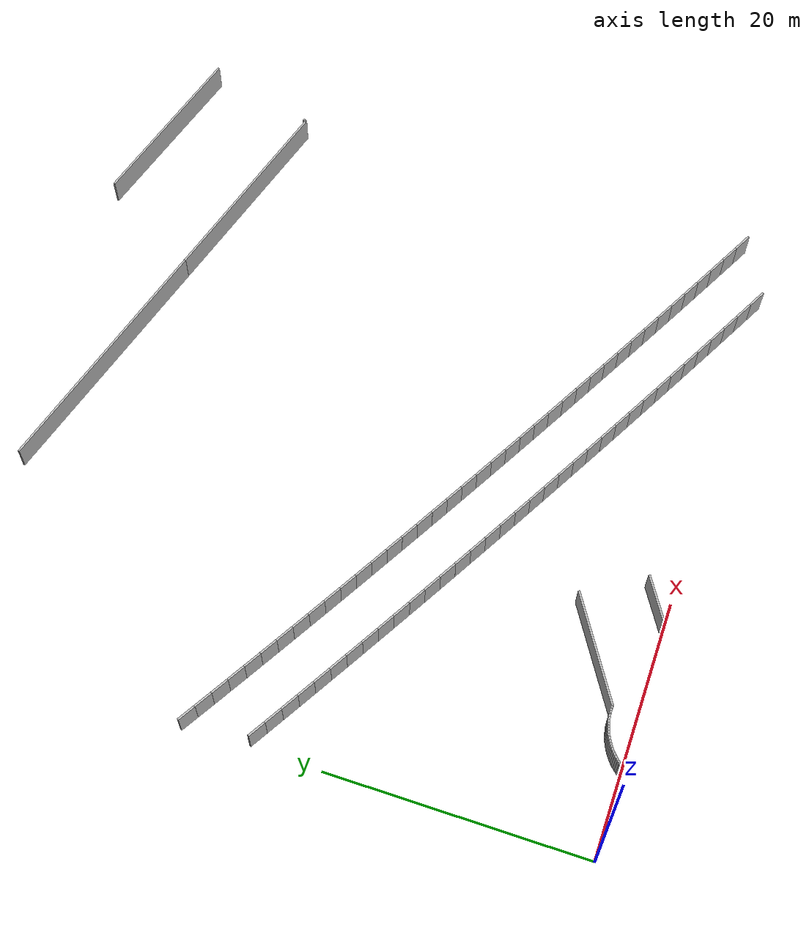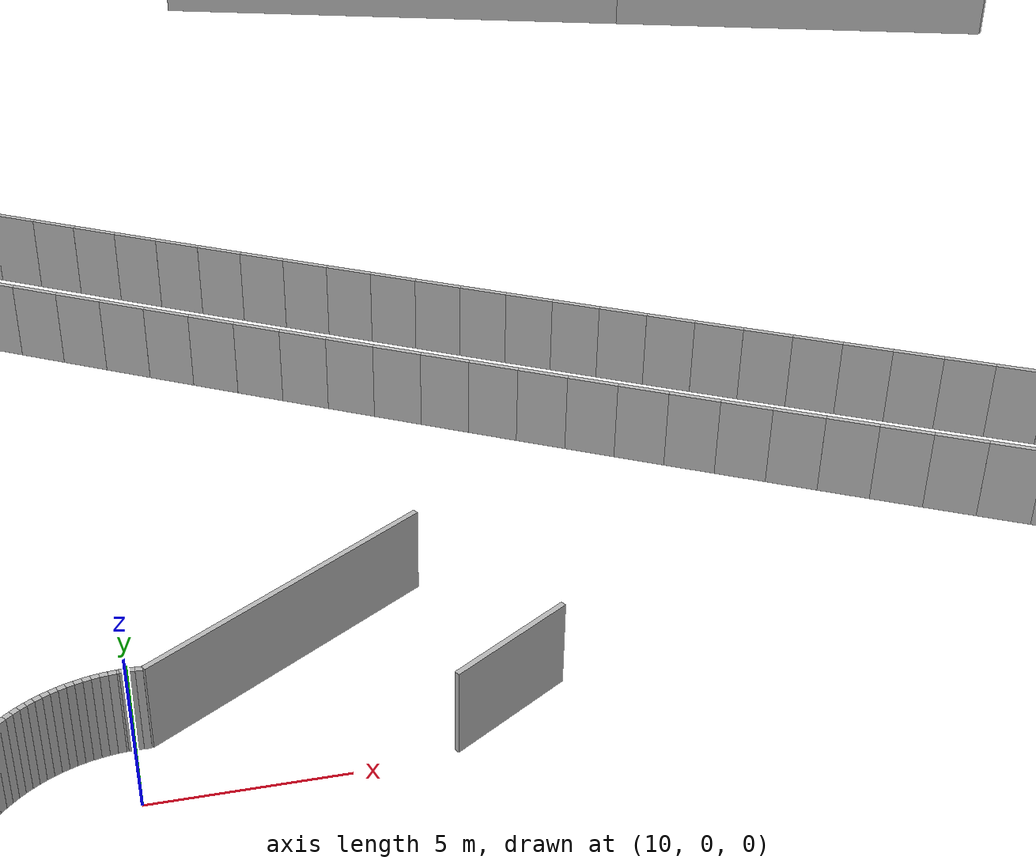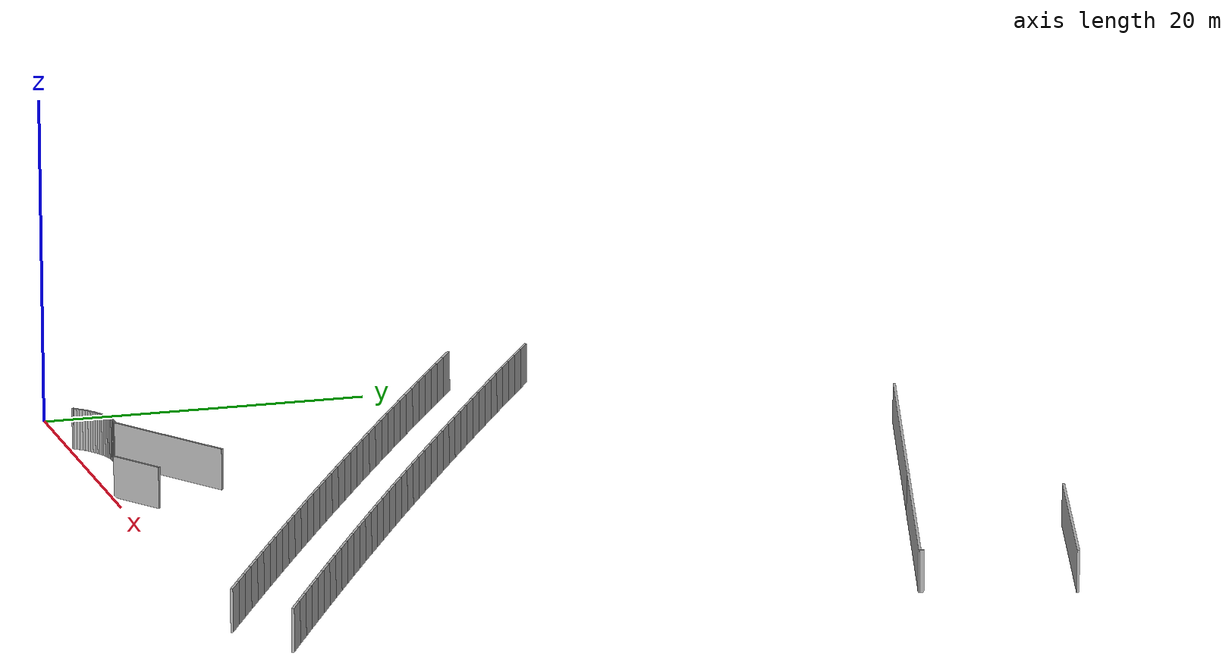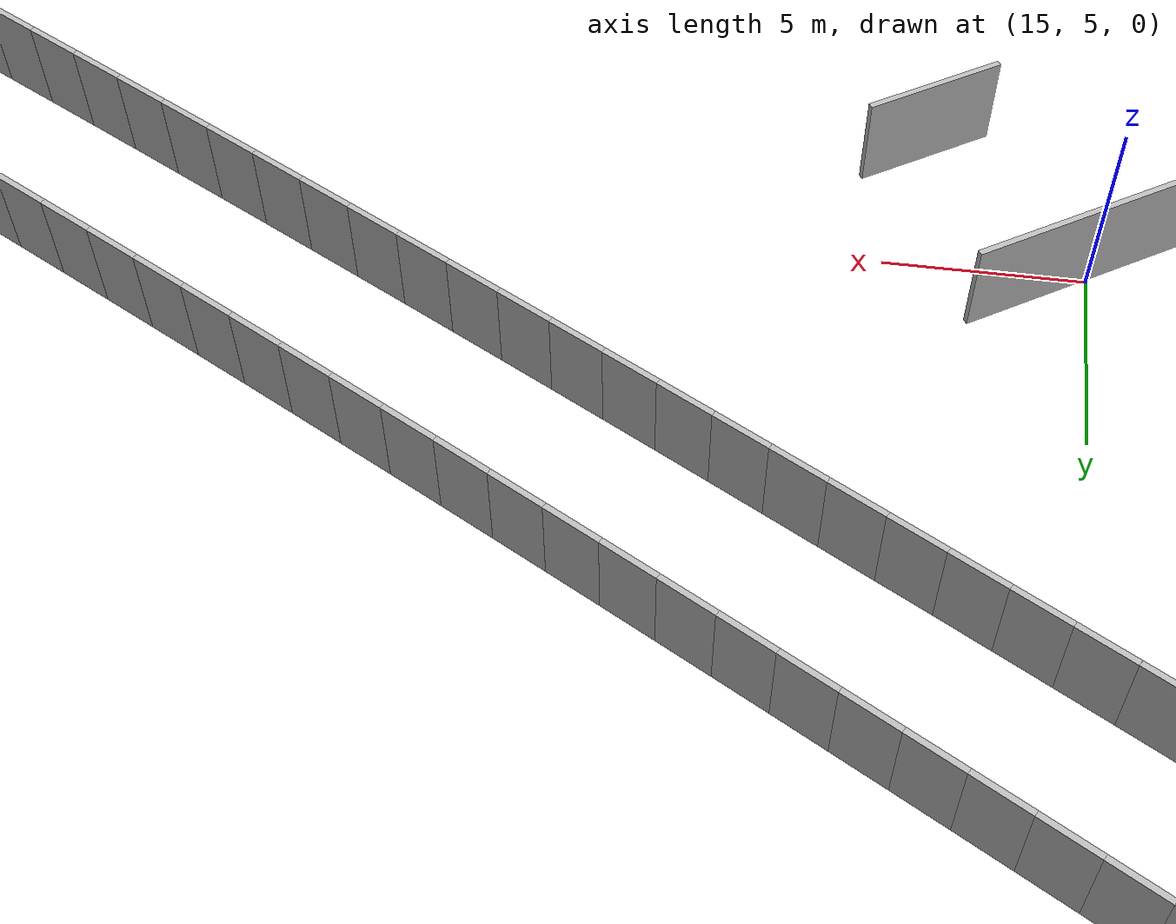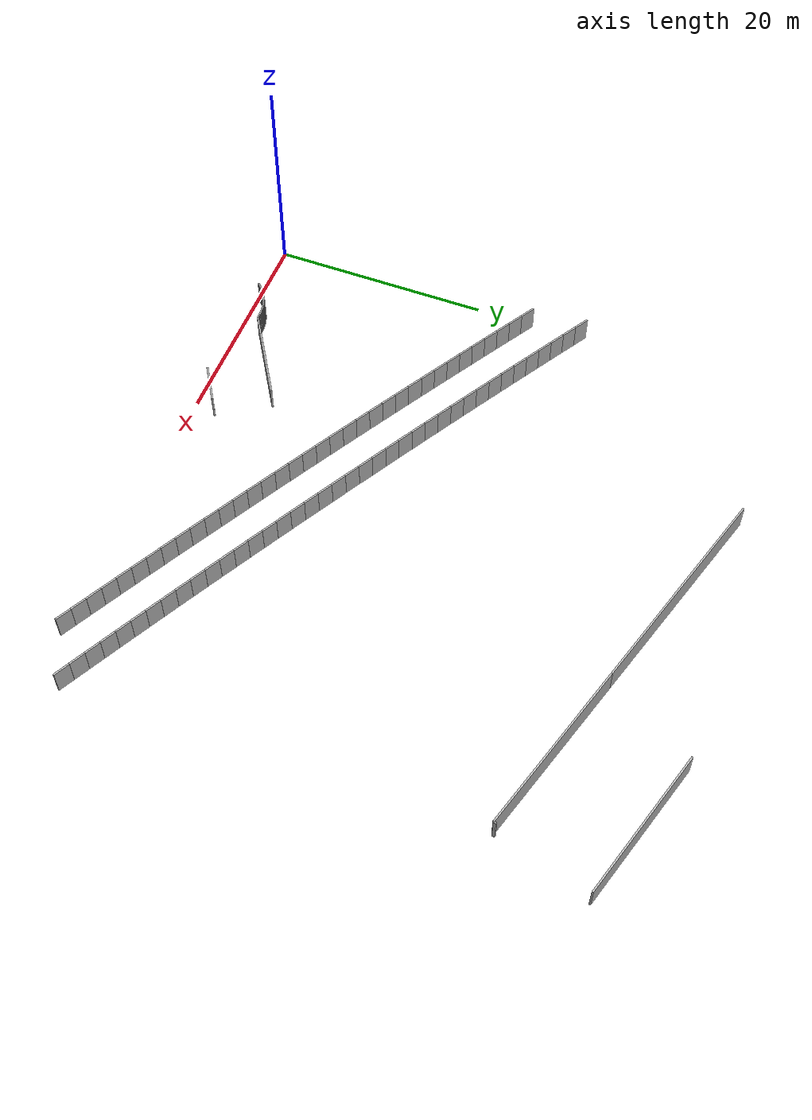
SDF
<sdf version="1.6">
 <model name="sps_1306">
  <static>1</static>
  <allow_auto_disable>0</allow_auto_disable>
  <link name="Wall348">
   <collision name="collision"><geometry><box><size>13.6171 0.15 2.5</size></box></geometry></collision>
   <visual name="visual">
    <geometry><box><size>13.6171 0.15 2.5</size></box></geometry>
    <transparency>0.0</transparency>
   </visual>
   <pose>45.7215 49.4496 1.25 0 -0 2.84871</pose>
  </link>
  <link name="Wall521">
   <collision name="collision"><geometry><box><size>0.246303 0.15 2.5</size></box></geometry></collision>
   <visual name="visual">
    <geometry><box><size>0.246303 0.15 2.5</size></box></geometry>
    <transparency>0.0</transparency>
   </visual>
   <pose>49.7046 39.0806 1.25 0 0 -1.86418</pose>
  </link>
  <link name="Wall605">
   <collision name="collision"><geometry><box><size>15.8757 0.15 2.5</size></box></geometry></collision>
   <visual name="visual">
    <geometry><box><size>15.8757 0.15 2.5</size></box></geometry>
    <transparency>0.0</transparency>
   </visual>
   <pose>42.0692 41.2546 1.25 0 -0 2.8487</pose>
  </link>
  <link name="Wall606">
   <collision name="collision"><geometry><box><size>20.1221 0.15 2.5</size></box></geometry></collision>
   <visual name="visual">
    <geometry><box><size>20.1221 0.15 2.5</size></box></geometry>
    <transparency>0.0</transparency>
   </visual>
   <pose>24.8368 46.4512 1.25 0 -0 2.8487</pose>
  </link>
  <link name="Wall2434">
   <collision name="collision"><geometry><box><size>3.67519 0.15 2.5</size></box></geometry></collision>
   <visual name="visual">
    <geometry><box><size>3.67519 0.15 2.5</size></box></geometry>
    <transparency>0.0</transparency>
   </visual>
   <pose>19.1415 1.16109 1.25 0 0 -2.58435</pose>
  </link>
  <link name="Wall2478">
   <collision name="collision"><geometry><box><size>0.130798 0.15 2.5</size></box></geometry></collision>
   <visual name="visual">
    <geometry><box><size>0.130798 0.15 2.5</size></box></geometry>
    <transparency>0.0</transparency>
   </visual>
   <pose>6.50817 0.300887 1.25 0 -0 0.557066</pose>
  </link>
  <link name="Wall2479">
   <collision name="collision"><geometry><box><size>0.205358 0.15 2.5</size></box></geometry></collision>
   <visual name="visual">
    <geometry><box><size>0.205358 0.15 2.5</size></box></geometry>
    <transparency>0.0</transparency>
   </visual>
   <pose>6.63137 0.412673 1.25 0 -0 0.851016</pose>
  </link>
  <link name="Wall2480">
   <collision name="collision"><geometry><box><size>0.20509 0.15 2.5</size></box></geometry></collision>
   <visual name="visual">
    <geometry><box><size>0.20509 0.15 2.5</size></box></geometry>
    <transparency>0.0</transparency>
   </visual>
   <pose>6.77004 0.563888 1.25 0 -0 0.806233</pose>
  </link>
  <link name="Wall2481">
   <collision name="collision"><geometry><box><size>0.205411 0.15 2.5</size></box></geometry></collision>
   <visual name="visual">
    <geometry><box><size>0.205411 0.15 2.5</size></box></geometry>
    <transparency>0.0</transparency>
   </visual>
   <pose>6.91543 0.708693 1.25 0 -0 0.760603</pose>
  </link>
  <link name="Wall2482">
   <collision name="collision"><geometry><box><size>0.205158 0.15 2.5</size></box></geometry></collision>
   <visual name="visual">
    <geometry><box><size>0.205158 0.15 2.5</size></box></geometry>
    <transparency>0.0</transparency>
   </visual>
   <pose>7.06725 0.846785 1.25 0 -0 0.7155</pose>
  </link>
  <link name="Wall2483">
   <collision name="collision"><geometry><box><size>0.205152 0.15 2.5</size></box></geometry></collision>
   <visual name="visual">
    <geometry><box><size>0.205152 0.15 2.5</size></box></geometry>
    <transparency>0.0</transparency>
   </visual>
   <pose>7.22506 0.977797 1.25 0 -0 0.67028</pose>
  </link>
  <link name="Wall2484">
   <collision name="collision"><geometry><box><size>0.205097 0.15 2.5</size></box></geometry></collision>
   <visual name="visual">
    <geometry><box><size>0.205097 0.15 2.5</size></box></geometry>
    <transparency>0.0</transparency>
   </visual>
   <pose>7.38854 1.10161 1.25 0 -0 0.626061</pose>
  </link>
  <link name="Wall2485">
   <collision name="collision"><geometry><box><size>0.205175 0.15 2.5</size></box></geometry></collision>
   <visual name="visual">
    <geometry><box><size>0.205175 0.15 2.5</size></box></geometry>
    <transparency>0.0</transparency>
   </visual>
   <pose>7.55746 1.21791 1.25 0 -0 0.579917</pose>
  </link>
  <link name="Wall2486">
   <collision name="collision"><geometry><box><size>0.205332 0.15 2.5</size></box></geometry></collision>
   <visual name="visual">
    <geometry><box><size>0.205332 0.15 2.5</size></box></geometry>
    <transparency>0.0</transparency>
   </visual>
   <pose>7.73156 1.32652 1.25 0 -0 0.535628</pose>
  </link>
  <link name="Wall2487">
   <collision name="collision"><geometry><box><size>0.205171 0.15 2.5</size></box></geometry></collision>
   <visual name="visual">
    <geometry><box><size>0.205171 0.15 2.5</size></box></geometry>
    <transparency>0.0</transparency>
   </visual>
   <pose>7.91036 1.4272 1.25 0 -0 0.489992</pose>
  </link>
  <link name="Wall2488">
   <collision name="collision"><geometry><box><size>0.205276 0.15 2.5</size></box></geometry></collision>
   <visual name="visual">
    <geometry><box><size>0.205276 0.15 2.5</size></box></geometry>
    <transparency>0.0</transparency>
   </visual>
   <pose>8.09356 1.51958 1.25 0 -0 0.4441</pose>
  </link>
  <link name="Wall2489">
   <collision name="collision"><geometry><box><size>0.205096 0.15 2.5</size></box></geometry></collision>
   <visual name="visual">
    <geometry><box><size>0.205096 0.15 2.5</size></box></geometry>
    <transparency>0.0</transparency>
   </visual>
   <pose>8.28066 1.60368 1.25 0 -0 0.400789</pose>
  </link>
  <link name="Wall2490">
   <collision name="collision"><geometry><box><size>0.205381 0.15 2.5</size></box></geometry></collision>
   <visual name="visual">
    <geometry><box><size>0.205381 0.15 2.5</size></box></geometry>
    <transparency>0.0</transparency>
   </visual>
   <pose>8.47137 1.6794 1.25 0 -0 0.355119</pose>
  </link>
  <link name="Wall2491">
   <collision name="collision"><geometry><box><size>0.205148 0.15 2.5</size></box></geometry></collision>
   <visual name="visual">
    <geometry><box><size>0.205148 0.15 2.5</size></box></geometry>
    <transparency>0.0</transparency>
   </visual>
   <pose>8.66537 1.74629 1.25 0 -0 0.308955</pose>
  </link>
  <link name="Wall2492">
   <collision name="collision"><geometry><box><size>0.205122 0.15 2.5</size></box></geometry></collision>
   <visual name="visual">
    <geometry><box><size>0.205122 0.15 2.5</size></box></geometry>
    <transparency>0.0</transparency>
   </visual>
   <pose>8.86208 1.80427 1.25 0 -0 0.264321</pose>
  </link>
  <link name="Wall2493">
   <collision name="collision"><geometry><box><size>0.205147 0.15 2.5</size></box></geometry></collision>
   <visual name="visual">
    <geometry><box><size>0.205147 0.15 2.5</size></box></geometry>
    <transparency>0.0</transparency>
   </visual>
   <pose>9.06118 1.85347 1.25 0 -0 0.220153</pose>
  </link>
  <link name="Wall2494">
   <collision name="collision"><geometry><box><size>0.205267 0.15 2.5</size></box></geometry></collision>
   <visual name="visual">
    <geometry><box><size>0.205267 0.15 2.5</size></box></geometry>
    <transparency>0.0</transparency>
   </visual>
   <pose>9.26235 1.89369 1.25 0 -0 0.174534</pose>
  </link>
  <link name="Wall2495">
   <collision name="collision"><geometry><box><size>0.205313 0.15 2.5</size></box></geometry></collision>
   <visual name="visual">
    <geometry><box><size>0.205313 0.15 2.5</size></box></geometry>
    <transparency>0.0</transparency>
   </visual>
   <pose>9.46523 1.9247 1.25 0 -0 0.12878</pose>
  </link>
  <link name="Wall2496">
   <collision name="collision"><geometry><box><size>0.205328 0.15 2.5</size></box></geometry></collision>
   <visual name="visual">
    <geometry><box><size>0.205328 0.15 2.5</size></box></geometry>
    <transparency>0.0</transparency>
   </visual>
   <pose>9.66933 1.94658 1.25 0 -0 0.0848199</pose>
  </link>
  <link name="Wall2497">
   <collision name="collision"><geometry><box><size>0.0512757 0.15 2.5</size></box></geometry></collision>
   <visual name="visual">
    <geometry><box><size>0.0512757 0.15 2.5</size></box></geometry>
    <transparency>0.0</transparency>
   </visual>
   <pose>9.79723 1.95659 1.25 0 -0 0.0512067</pose>
  </link>
  <link name="Wall2498">
   <collision name="collision"><geometry><box><size>0.188316 0.15 2.5</size></box></geometry></collision>
   <visual name="visual">
    <geometry><box><size>0.188316 0.15 2.5</size></box></geometry>
    <transparency>0.0</transparency>
   </visual>
   <pose>9.91695 1.96071 1.25 0 -0 0.0298225</pose>
  </link>
  <link name="Wall2499">
   <collision name="collision"><geometry><box><size>0.188004 0.15 2.5</size></box></geometry></collision>
   <visual name="visual">
    <geometry><box><size>0.188004 0.15 2.5</size></box></geometry>
    <transparency>0.0</transparency>
   </visual>
   <pose>10.1051 1.96229 1.25 0 0 -0.0129863</pose>
  </link>
  <link name="Wall2500">
   <collision name="collision"><geometry><box><size>0.188059 0.15 2.5</size></box></geometry></collision>
   <visual name="visual">
    <geometry><box><size>0.188059 0.15 2.5</size></box></geometry>
    <transparency>0.0</transparency>
   </visual>
   <pose>10.293 1.95619 1.25 0 0 -0.0519519</pose>
  </link>
  <link name="Wall2501">
   <collision name="collision"><geometry><box><size>8.85031 0.15 2.5</size></box></geometry></collision>
   <visual name="visual">
    <geometry><box><size>8.85031 0.15 2.5</size></box></geometry>
    <transparency>0.0</transparency>
   </visual>
   <pose>14.1428 4.29109 1.25 0 -0 0.557123</pose>
  </link>
  <link name="Wall8672">
   <collision name="collision"><geometry><box><size>1.49901 0.15 2.5</size></box></geometry></collision>
   <visual name="visual">
    <geometry><box><size>1.49901 0.15 2.5</size></box></geometry>
    <transparency>0.0</transparency>
   </visual>
   <pose>0.78054 25.1134 1.25 0 0 -0.53308</pose>
  </link>
  <link name="Wall8673">
   <collision name="collision"><geometry><box><size>1.49907 0.15 2.5</size></box></geometry></collision>
   <visual name="visual">
    <geometry><box><size>1.49907 0.15 2.5</size></box></geometry>
    <transparency>0.0</transparency>
   </visual>
   <pose>2.07217 24.3526 1.25 0 0 -0.531544</pose>
  </link>
  <link name="Wall8674">
   <collision name="collision"><geometry><box><size>1.49881 0.15 2.5</size></box></geometry></collision>
   <visual name="visual">
    <geometry><box><size>1.49881 0.15 2.5</size></box></geometry>
    <transparency>0.0</transparency>
   </visual>
   <pose>3.36486 23.5938 1.25 0 0 -0.530041</pose>
  </link>
  <link name="Wall8675">
   <collision name="collision"><geometry><box><size>1.499 0.15 2.5</size></box></geometry></collision>
   <visual name="visual">
    <geometry><box><size>1.499 0.15 2.5</size></box></geometry>
    <transparency>0.0</transparency>
   </visual>
   <pose>4.65874 22.8371 1.25 0 0 -0.528318</pose>
  </link>
  <link name="Wall8676">
   <collision name="collision"><geometry><box><size>1.49898 0.15 2.5</size></box></geometry></collision>
   <visual name="visual">
    <geometry><box><size>1.49898 0.15 2.5</size></box></geometry>
    <transparency>0.0</transparency>
   </visual>
   <pose>5.95394 22.0825 1.25 0 0 -0.526767</pose>
  </link>
  <link name="Wall8677">
   <collision name="collision"><geometry><box><size>1.49887 0.15 2.5</size></box></geometry></collision>
   <visual name="visual">
    <geometry><box><size>1.49887 0.15 2.5</size></box></geometry>
    <transparency>0.0</transparency>
   </visual>
   <pose>7.25024 21.3299 1.25 0 0 -0.525258</pose>
  </link>
  <link name="Wall8678">
   <collision name="collision"><geometry><box><size>1.49895 0.15 2.5</size></box></geometry></collision>
   <visual name="visual">
    <geometry><box><size>1.49895 0.15 2.5</size></box></geometry>
    <transparency>0.0</transparency>
   </visual>
   <pose>8.54766 20.5793 1.25 0 0 -0.523722</pose>
  </link>
  <link name="Wall8679">
   <collision name="collision"><geometry><box><size>1.49898 0.15 2.5</size></box></geometry></collision>
   <visual name="visual">
    <geometry><box><size>1.49898 0.15 2.5</size></box></geometry>
    <transparency>0.0</transparency>
   </visual>
   <pose>9.84637 19.8308 1.25 0 0 -0.521969</pose>
  </link>
  <link name="Wall8680">
   <collision name="collision"><geometry><box><size>1.499 0.15 2.5</size></box></geometry></collision>
   <visual name="visual">
    <geometry><box><size>1.499 0.15 2.5</size></box></geometry>
    <transparency>0.0</transparency>
   </visual>
   <pose>11.1463 19.0843 1.25 0 0 -0.520601</pose>
  </link>
  <link name="Wall8681">
   <collision name="collision"><geometry><box><size>1.49883 0.15 2.5</size></box></geometry></collision>
   <visual name="visual">
    <geometry><box><size>1.49883 0.15 2.5</size></box></geometry>
    <transparency>0.0</transparency>
   </visual>
   <pose>12.4473 18.3399 1.25 0 0 -0.518838</pose>
  </link>
  <link name="Wall8682">
   <collision name="collision"><geometry><box><size>1.49898 0.15 2.5</size></box></geometry></collision>
   <visual name="visual">
    <geometry><box><size>1.49898 0.15 2.5</size></box></geometry>
    <transparency>0.0</transparency>
   </visual>
   <pose>13.7494 17.5976 1.25 0 0 -0.517373</pose>
  </link>
  <link name="Wall8683">
   <collision name="collision"><geometry><box><size>1.4988 0.15 2.5</size></box></geometry></collision>
   <visual name="visual">
    <geometry><box><size>1.4988 0.15 2.5</size></box></geometry>
    <transparency>0.0</transparency>
   </visual>
   <pose>15.0528 16.8573 1.25 0 0 -0.515757</pose>
  </link>
  <link name="Wall8684">
   <collision name="collision"><geometry><box><size>1.49897 0.15 2.5</size></box></geometry></collision>
   <visual name="visual">
    <geometry><box><size>1.49897 0.15 2.5</size></box></geometry>
    <transparency>0.0</transparency>
   </visual>
   <pose>16.3573 16.1191 1.25 0 0 -0.514146</pose>
  </link>
  <link name="Wall8685">
   <collision name="collision"><geometry><box><size>1.49908 0.15 2.5</size></box></geometry></collision>
   <visual name="visual">
    <geometry><box><size>1.49908 0.15 2.5</size></box></geometry>
    <transparency>0.0</transparency>
   </visual>
   <pose>17.663 15.3829 1.25 0 0 -0.512611</pose>
  </link>
  <link name="Wall8686">
   <collision name="collision"><geometry><box><size>1.49888 0.15 2.5</size></box></geometry></collision>
   <visual name="visual">
    <geometry><box><size>1.49888 0.15 2.5</size></box></geometry>
    <transparency>0.0</transparency>
   </visual>
   <pose>18.97 14.6488 1.25 0 0 -0.510959</pose>
  </link>
  <link name="Wall8687">
   <collision name="collision"><geometry><box><size>1.49893 0.15 2.5</size></box></geometry></collision>
   <visual name="visual">
    <geometry><box><size>1.49893 0.15 2.5</size></box></geometry>
    <transparency>0.0</transparency>
   </visual>
   <pose>20.278 13.9168 1.25 0 0 -0.509444</pose>
  </link>
  <link name="Wall8688">
   <collision name="collision"><geometry><box><size>1.49897 0.15 2.5</size></box></geometry></collision>
   <visual name="visual">
    <geometry><box><size>1.49897 0.15 2.5</size></box></geometry>
    <transparency>0.0</transparency>
   </visual>
   <pose>21.5871 13.1868 1.25 0 0 -0.507893</pose>
  </link>
  <link name="Wall8689">
   <collision name="collision"><geometry><box><size>1.49886 0.15 2.5</size></box></geometry></collision>
   <visual name="visual">
    <geometry><box><size>1.49886 0.15 2.5</size></box></geometry>
    <transparency>0.0</transparency>
   </visual>
   <pose>22.8975 12.4589 1.25 0 0 -0.506256</pose>
  </link>
  <link name="Wall8690">
   <collision name="collision"><geometry><box><size>1.49893 0.15 2.5</size></box></geometry></collision>
   <visual name="visual">
    <geometry><box><size>1.49893 0.15 2.5</size></box></geometry>
    <transparency>0.0</transparency>
   </visual>
   <pose>24.2089 11.733 1.25 0 0 -0.504832</pose>
  </link>
  <link name="Wall8691">
   <collision name="collision"><geometry><box><size>1.49891 0.15 2.5</size></box></geometry></collision>
   <visual name="visual">
    <geometry><box><size>1.49891 0.15 2.5</size></box></geometry>
    <transparency>0.0</transparency>
   </visual>
   <pose>25.5214 11.0092 1.25 0 0 -0.503029</pose>
  </link>
  <link name="Wall8692">
   <collision name="collision"><geometry><box><size>1.49907 0.15 2.5</size></box></geometry></collision>
   <visual name="visual">
    <geometry><box><size>1.49907 0.15 2.5</size></box></geometry>
    <transparency>0.0</transparency>
   </visual>
   <pose>26.8353 10.2875 1.25 0 0 -0.501621</pose>
  </link>
  <link name="Wall8693">
   <collision name="collision"><geometry><box><size>1.49897 0.15 2.5</size></box></geometry></collision>
   <visual name="visual">
    <geometry><box><size>1.49897 0.15 2.5</size></box></geometry>
    <transparency>0.0</transparency>
   </visual>
   <pose>28.1503 9.56789 1.25 0 0 -0.499802</pose>
  </link>
  <link name="Wall8694">
   <collision name="collision"><geometry><box><size>1.49898 0.15 2.5</size></box></geometry></collision>
   <visual name="visual">
    <geometry><box><size>1.49898 0.15 2.5</size></box></geometry>
    <transparency>0.0</transparency>
   </visual>
   <pose>29.4664 8.85039 1.25 0 0 -0.498453</pose>
  </link>
  <link name="Wall8695">
   <collision name="collision"><geometry><box><size>1.49889 0.15 2.5</size></box></geometry></collision>
   <visual name="visual">
    <geometry><box><size>1.49889 0.15 2.5</size></box></geometry>
    <transparency>0.0</transparency>
   </visual>
   <pose>30.7836 8.13499 1.25 0 0 -0.496633</pose>
  </link>
  <link name="Wall8696">
   <collision name="collision"><geometry><box><size>1.4989 0.15 2.5</size></box></geometry></collision>
   <visual name="visual">
    <geometry><box><size>1.4989 0.15 2.5</size></box></geometry>
    <transparency>0.0</transparency>
   </visual>
   <pose>32.1019 7.42171 1.25 0 0 -0.495284</pose>
  </link>
  <link name="Wall8697">
   <collision name="collision"><geometry><box><size>1.49894 0.15 2.5</size></box></geometry></collision>
   <visual name="visual">
    <geometry><box><size>1.49894 0.15 2.5</size></box></geometry>
    <transparency>0.0</transparency>
   </visual>
   <pose>33.4213 6.7104 1.25 0 0 -0.493608</pose>
  </link>
  <link name="Wall8698">
   <collision name="collision"><geometry><box><size>1.49884 0.15 2.5</size></box></geometry></collision>
   <visual name="visual">
    <geometry><box><size>1.49884 0.15 2.5</size></box></geometry>
    <transparency>0.0</transparency>
   </visual>
   <pose>34.7418 6.0012 1.25 0 0 -0.492116</pose>
  </link>
  <link name="Wall8699">
   <collision name="collision"><geometry><box><size>1.49905 0.15 2.5</size></box></geometry></collision>
   <visual name="visual">
    <geometry><box><size>1.49905 0.15 2.5</size></box></geometry>
    <transparency>0.0</transparency>
   </visual>
   <pose>36.0634 5.29411 1.25 0 0 -0.490381</pose>
  </link>
  <link name="Wall8700">
   <collision name="collision"><geometry><box><size>1.49888 0.15 2.5</size></box></geometry></collision>
   <visual name="visual">
    <geometry><box><size>1.49888 0.15 2.5</size></box></geometry>
    <transparency>0.0</transparency>
   </visual>
   <pose>37.3863 4.5891 1.25 0 0 -0.488963</pose>
  </link>
  <link name="Wall8701">
   <collision name="collision"><geometry><box><size>1.49909 0.15 2.5</size></box></geometry></collision>
   <visual name="visual">
    <geometry><box><size>1.49909 0.15 2.5</size></box></geometry>
    <transparency>0.0</transparency>
   </visual>
   <pose>38.7102 3.88609 1.25 0 0 -0.48732</pose>
  </link>
  <link name="Wall8702">
   <collision name="collision"><geometry><box><size>1.4988 0.15 2.5</size></box></geometry></collision>
   <visual name="visual">
    <geometry><box><size>1.4988 0.15 2.5</size></box></geometry>
    <transparency>0.0</transparency>
   </visual>
   <pose>40.0351 3.18519 1.25 0 0 -0.485813</pose>
  </link>
  <link name="Wall8703">
   <collision name="collision"><geometry><box><size>1.49904 0.15 2.5</size></box></geometry></collision>
   <visual name="visual">
    <geometry><box><size>1.49904 0.15 2.5</size></box></geometry>
    <transparency>0.0</transparency>
   </visual>
   <pose>41.3613 2.48649 1.25 0 0 -0.484025</pose>
  </link>
  <link name="Wall8704">
   <collision name="collision"><geometry><box><size>1.49894 0.15 2.5</size></box></geometry></collision>
   <visual name="visual">
    <geometry><box><size>1.49894 0.15 2.5</size></box></geometry>
    <transparency>0.0</transparency>
   </visual>
   <pose>42.6886 1.7899 1.25 0 0 -0.482587</pose>
  </link>
  <link name="Wall8705">
   <collision name="collision"><geometry><box><size>1.49884 0.15 2.5</size></box></geometry></collision>
   <visual name="visual">
    <geometry><box><size>1.49884 0.15 2.5</size></box></geometry>
    <transparency>0.0</transparency>
   </visual>
   <pose>44.0168 1.09538 1.25 0 0 -0.480967</pose>
  </link>
  <link name="Wall8706">
   <collision name="collision"><geometry><box><size>1.49908 0.15 2.5</size></box></geometry></collision>
   <visual name="visual">
    <geometry><box><size>1.49908 0.15 2.5</size></box></geometry>
    <transparency>0.0</transparency>
   </visual>
   <pose>45.3462 0.402877 1.25 0 0 -0.479508</pose>
  </link>
  <link name="Wall9751">
   <collision name="collision"><geometry><box><size>1.49251 0.15 2.5</size></box></geometry></collision>
   <visual name="visual">
    <geometry><box><size>1.49251 0.15 2.5</size></box></geometry>
    <transparency>0.0</transparency>
   </visual>
   <pose>0.316551 30.2 1.25 0 0 -0.536317</pose>
  </link>
  <link name="Wall9752">
   <collision name="collision"><geometry><box><size>1.49225 0.15 2.5</size></box></geometry></collision>
   <visual name="visual">
    <geometry><box><size>1.49225 0.15 2.5</size></box></geometry>
    <transparency>0.0</transparency>
   </visual>
   <pose>1.60003 29.4385 1.25 0 0 -0.534661</pose>
  </link>
  <link name="Wall9753">
   <collision name="collision"><geometry><box><size>1.49231 0.15 2.5</size></box></geometry></collision>
   <visual name="visual">
    <geometry><box><size>1.49231 0.15 2.5</size></box></geometry>
    <transparency>0.0</transparency>
   </visual>
   <pose>2.88464 28.6791 1.25 0 0 -0.533118</pose>
  </link>
  <link name="Wall9754">
   <collision name="collision"><geometry><box><size>1.49243 0.15 2.5</size></box></geometry></collision>
   <visual name="visual">
    <geometry><box><size>1.49243 0.15 2.5</size></box></geometry>
    <transparency>0.0</transparency>
   </visual>
   <pose>4.17046 27.9216 1.25 0 0 -0.531645</pose>
  </link>
  <link name="Wall9755">
   <collision name="collision"><geometry><box><size>1.49248 0.15 2.5</size></box></geometry></collision>
   <visual name="visual">
    <geometry><box><size>1.49248 0.15 2.5</size></box></geometry>
    <transparency>0.0</transparency>
   </visual>
   <pose>5.45757 27.1661 1.25 0 0 -0.52992</pose>
  </link>
  <link name="Wall9756">
   <collision name="collision"><geometry><box><size>1.49236 0.15 2.5</size></box></geometry></collision>
   <visual name="visual">
    <geometry><box><size>1.49236 0.15 2.5</size></box></geometry>
    <transparency>0.0</transparency>
   </visual>
   <pose>6.74587 26.4127 1.25 0 0 -0.528404</pose>
  </link>
  <link name="Wall9757">
   <collision name="collision"><geometry><box><size>1.49253 0.15 2.5</size></box></geometry></collision>
   <visual name="visual">
    <geometry><box><size>1.49253 0.15 2.5</size></box></geometry>
    <transparency>0.0</transparency>
   </visual>
   <pose>8.03536 25.6613 1.25 0 0 -0.52682</pose>
  </link>
  <link name="Wall9758">
   <collision name="collision"><geometry><box><size>1.4923 0.15 2.5</size></box></geometry></collision>
   <visual name="visual">
    <geometry><box><size>1.4923 0.15 2.5</size></box></geometry>
    <transparency>0.0</transparency>
   </visual>
   <pose>9.32604 24.912 1.25 0 0 -0.525163</pose>
  </link>
  <link name="Wall9759">
   <collision name="collision"><geometry><box><size>1.49247 0.15 2.5</size></box></geometry></collision>
   <visual name="visual">
    <geometry><box><size>1.49247 0.15 2.5</size></box></geometry>
    <transparency>0.0</transparency>
   </visual>
   <pose>10.6179 24.1647 1.25 0 0 -0.523727</pose>
  </link>
  <link name="Wall9760">
   <collision name="collision"><geometry><box><size>1.49237 0.15 2.5</size></box></geometry></collision>
   <visual name="visual">
    <geometry><box><size>1.49237 0.15 2.5</size></box></geometry>
    <transparency>0.0</transparency>
   </visual>
   <pose>11.9108 23.4194 1.25 0 0 -0.522063</pose>
  </link>
  <link name="Wall9761">
   <collision name="collision"><geometry><box><size>1.49246 0.15 2.5</size></box></geometry></collision>
   <visual name="visual">
    <geometry><box><size>1.49246 0.15 2.5</size></box></geometry>
    <transparency>0.0</transparency>
   </visual>
   <pose>13.205 22.6762 1.25 0 0 -0.520521</pose>
  </link>
  <link name="Wall9762">
   <collision name="collision"><geometry><box><size>1.49224 0.15 2.5</size></box></geometry></collision>
   <visual name="visual">
    <geometry><box><size>1.49224 0.15 2.5</size></box></geometry>
    <transparency>0.0</transparency>
   </visual>
   <pose>14.5004 21.9351 1.25 0 0 -0.518862</pose>
  </link>
  <link name="Wall9763">
   <collision name="collision"><geometry><box><size>1.4925 0.15 2.5</size></box></geometry></collision>
   <visual name="visual">
    <geometry><box><size>1.4925 0.15 2.5</size></box></geometry>
    <transparency>0.0</transparency>
   </visual>
   <pose>15.7969 21.196 1.25 0 0 -0.517351</pose>
  </link>
  <link name="Wall9764">
   <collision name="collision"><geometry><box><size>1.49235 0.15 2.5</size></box></geometry></collision>
   <visual name="visual">
    <geometry><box><size>1.49235 0.15 2.5</size></box></geometry>
    <transparency>0.0</transparency>
   </visual>
   <pose>17.0946 20.4589 1.25 0 0 -0.515763</pose>
  </link>
  <link name="Wall9765">
   <collision name="collision"><geometry><box><size>1.49227 0.15 2.5</size></box></geometry></collision>
   <visual name="visual">
    <geometry><box><size>1.49227 0.15 2.5</size></box></geometry>
    <transparency>0.0</transparency>
   </visual>
   <pose>18.3934 19.724 1.25 0 0 -0.514098</pose>
  </link>
  <link name="Wall9766">
   <collision name="collision"><geometry><box><size>1.49244 0.15 2.5</size></box></geometry></collision>
   <visual name="visual">
    <geometry><box><size>1.49244 0.15 2.5</size></box></geometry>
    <transparency>0.0</transparency>
   </visual>
   <pose>19.6934 18.9911 1.25 0 0 -0.512628</pose>
  </link>
  <link name="Wall9767">
   <collision name="collision"><geometry><box><size>1.49243 0.15 2.5</size></box></geometry></collision>
   <visual name="visual">
    <geometry><box><size>1.49243 0.15 2.5</size></box></geometry>
    <transparency>0.0</transparency>
   </visual>
   <pose>20.9946 18.2602 1.25 0 0 -0.510944</pose>
  </link>
  <link name="Wall9768">
   <collision name="collision"><geometry><box><size>1.49238 0.15 2.5</size></box></geometry></collision>
   <visual name="visual">
    <geometry><box><size>1.49238 0.15 2.5</size></box></geometry>
    <transparency>0.0</transparency>
   </visual>
   <pose>22.2969 17.5313 1.25 0 0 -0.509553</pose>
  </link>
  <link name="Wall9769">
   <collision name="collision"><geometry><box><size>1.49257 0.15 2.5</size></box></geometry></collision>
   <visual name="visual">
    <geometry><box><size>1.49257 0.15 2.5</size></box></geometry>
    <transparency>0.0</transparency>
   </visual>
   <pose>23.6004 16.8044 1.25 0 0 -0.507845</pose>
  </link>
  <link name="Wall9770">
   <collision name="collision"><geometry><box><size>1.49245 0.15 2.5</size></box></geometry></collision>
   <visual name="visual">
    <geometry><box><size>1.49245 0.15 2.5</size></box></geometry>
    <transparency>0.0</transparency>
   </visual>
   <pose>24.9051 16.0796 1.25 0 0 -0.506348</pose>
  </link>
  <link name="Wall9771">
   <collision name="collision"><geometry><box><size>1.49242 0.15 2.5</size></box></geometry></collision>
   <visual name="visual">
    <geometry><box><size>1.49242 0.15 2.5</size></box></geometry>
    <transparency>0.0</transparency>
   </visual>
   <pose>26.2108 15.3569 1.25 0 0 -0.504628</pose>
  </link>
  <link name="Wall9772">
   <collision name="collision"><geometry><box><size>1.49239 0.15 2.5</size></box></geometry></collision>
   <visual name="visual">
    <geometry><box><size>1.49239 0.15 2.5</size></box></geometry>
    <transparency>0.0</transparency>
   </visual>
   <pose>27.5178 14.6363 1.25 0 0 -0.503146</pose>
  </link>
  <link name="Wall9773">
   <collision name="collision"><geometry><box><size>1.49234 0.15 2.5</size></box></geometry></collision>
   <visual name="visual">
    <geometry><box><size>1.49234 0.15 2.5</size></box></geometry>
    <transparency>0.0</transparency>
   </visual>
   <pose>28.8258 13.9178 1.25 0 0 -0.501481</pose>
  </link>
  <link name="Wall9774">
   <collision name="collision"><geometry><box><size>1.49245 0.15 2.5</size></box></geometry></collision>
   <visual name="visual">
    <geometry><box><size>1.49245 0.15 2.5</size></box></geometry>
    <transparency>0.0</transparency>
   </visual>
   <pose>30.135 13.2014 1.25 0 0 -0.499905</pose>
  </link>
  <link name="Wall9775">
   <collision name="collision"><geometry><box><size>1.49237 0.15 2.5</size></box></geometry></collision>
   <visual name="visual">
    <geometry><box><size>1.49237 0.15 2.5</size></box></geometry>
    <transparency>0.0</transparency>
   </visual>
   <pose>31.4453 12.487 1.25 0 0 -0.498443</pose>
  </link>
  <link name="Wall9776">
   <collision name="collision"><geometry><box><size>1.49237 0.15 2.5</size></box></geometry></collision>
   <visual name="visual">
    <geometry><box><size>1.49237 0.15 2.5</size></box></geometry>
    <transparency>0.0</transparency>
   </visual>
   <pose>32.7567 11.7747 1.25 0 0 -0.496722</pose>
  </link>
  <link name="Wall9777">
   <collision name="collision"><geometry><box><size>1.49238 0.15 2.5</size></box></geometry></collision>
   <visual name="visual">
    <geometry><box><size>1.49238 0.15 2.5</size></box></geometry>
    <transparency>0.0</transparency>
   </visual>
   <pose>34.0692 11.0644 1.25 0 0 -0.495368</pose>
  </link>
  <link name="Wall9778">
   <collision name="collision"><geometry><box><size>1.49246 0.15 2.5</size></box></geometry></collision>
   <visual name="visual">
    <geometry><box><size>1.49246 0.15 2.5</size></box></geometry>
    <transparency>0.0</transparency>
   </visual>
   <pose>35.3829 10.3562 1.25 0 0 -0.493482</pose>
  </link>
  <link name="Wall9779">
   <collision name="collision"><geometry><box><size>1.4924 0.15 2.5</size></box></geometry></collision>
   <visual name="visual">
    <geometry><box><size>1.4924 0.15 2.5</size></box></geometry>
    <transparency>0.0</transparency>
   </visual>
   <pose>36.6977 9.65019 1.25 0 0 -0.492019</pose>
  </link>
  <link name="Wall9780">
   <collision name="collision"><geometry><box><size>1.49236 0.15 2.5</size></box></geometry></collision>
   <visual name="visual">
    <geometry><box><size>1.49236 0.15 2.5</size></box></geometry>
    <transparency>0.0</transparency>
   </visual>
   <pose>38.0136 8.94618 1.25 0 0 -0.490501</pose>
  </link>
  <link name="Wall9781">
   <collision name="collision"><geometry><box><size>1.49249 0.15 2.5</size></box></geometry></collision>
   <visual name="visual">
    <geometry><box><size>1.49249 0.15 2.5</size></box></geometry>
    <transparency>0.0</transparency>
   </visual>
   <pose>39.3306 8.24419 1.25 0 0 -0.488925</pose>
  </link>
  <link name="Wall9782">
   <collision name="collision"><geometry><box><size>1.49232 0.15 2.5</size></box></geometry></collision>
   <visual name="visual">
    <geometry><box><size>1.49232 0.15 2.5</size></box></geometry>
    <transparency>0.0</transparency>
   </visual>
   <pose>40.6488 7.5443 1.25 0 0 -0.487318</pose>
  </link>
  <link name="Wall9783">
   <collision name="collision"><geometry><box><size>1.49241 0.15 2.5</size></box></geometry></collision>
   <visual name="visual">
    <geometry><box><size>1.49241 0.15 2.5</size></box></geometry>
    <transparency>0.0</transparency>
   </visual>
   <pose>41.9679 6.84651 1.25 0 0 -0.485762</pose>
  </link>
  <link name="Wall9784">
   <collision name="collision"><geometry><box><size>1.49233 0.15 2.5</size></box></geometry></collision>
   <visual name="visual">
    <geometry><box><size>1.49233 0.15 2.5</size></box></geometry>
    <transparency>0.0</transparency>
   </visual>
   <pose>43.2882 6.1508 1.25 0 0 -0.484171</pose>
  </link>
  <link name="Wall9785">
   <collision name="collision"><geometry><box><size>1.49244 0.15 2.5</size></box></geometry></collision>
   <visual name="visual">
    <geometry><box><size>1.49244 0.15 2.5</size></box></geometry>
    <transparency>0.0</transparency>
   </visual>
   <pose>44.6096 5.4572 1.25 0 0 -0.48256</pose>
  </link>
  <link name="Wall9786">
   <collision name="collision"><geometry><box><size>1.49232 0.15 2.5</size></box></geometry></collision>
   <visual name="visual">
    <geometry><box><size>1.49232 0.15 2.5</size></box></geometry>
    <transparency>0.0</transparency>
   </visual>
   <pose>45.9322 4.7657 1.25 0 0 -0.480988</pose>
  </link>
  <link name="Wall9787">
   <collision name="collision"><geometry><box><size>1.49247 0.15 2.5</size></box></geometry></collision>
   <visual name="visual">
    <geometry><box><size>1.49247 0.15 2.5</size></box></geometry>
    <transparency>0.0</transparency>
   </visual>
   <pose>47.2558 4.07628 1.25 0 0 -0.479413</pose>
  </link>
  <link name="Wall9788">
   <collision name="collision"><geometry><box><size>1.49241 0.15 2.5</size></box></geometry></collision>
   <visual name="visual">
    <geometry><box><size>1.49241 0.15 2.5</size></box></geometry>
    <transparency>0.0</transparency>
   </visual>
   <pose>48.5805 3.38887 1.25 0 0 -0.477914</pose>
  </link>
  <link name="Wall9789">
   <collision name="collision"><geometry><box><size>1.49249 0.15 2.5</size></box></geometry></collision>
   <visual name="visual">
    <geometry><box><size>1.49249 0.15 2.5</size></box></geometry>
    <transparency>0.0</transparency>
   </visual>
   <pose>49.9063 2.70357 1.25 0 0 -0.476231</pose>
  </link>
 </model>
</sdf>
